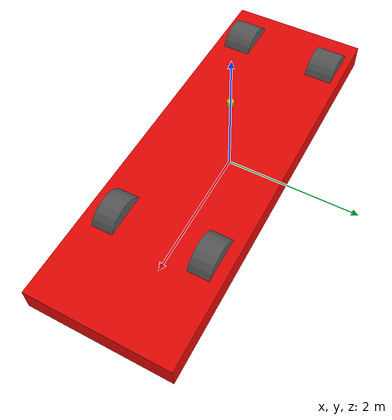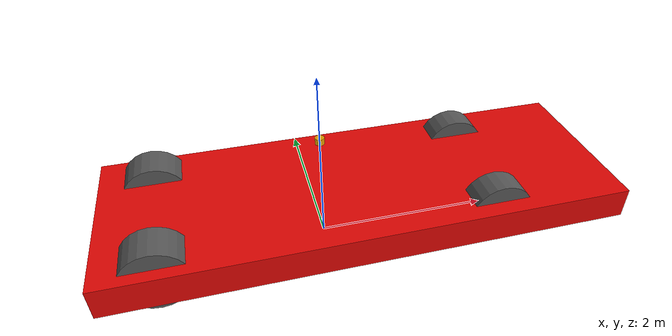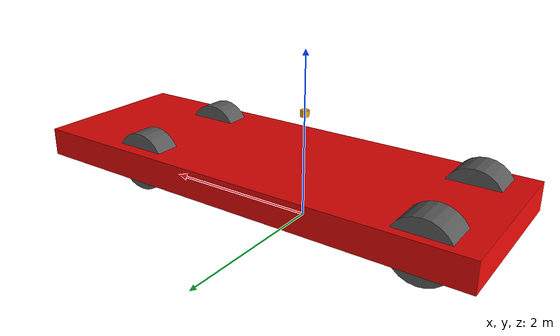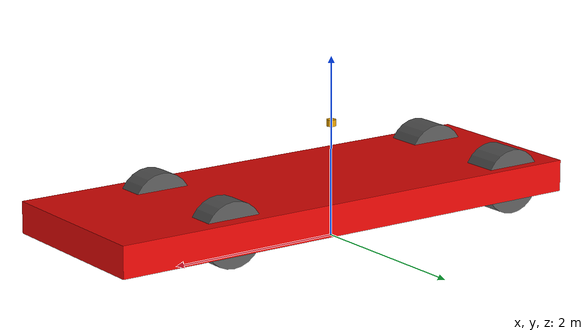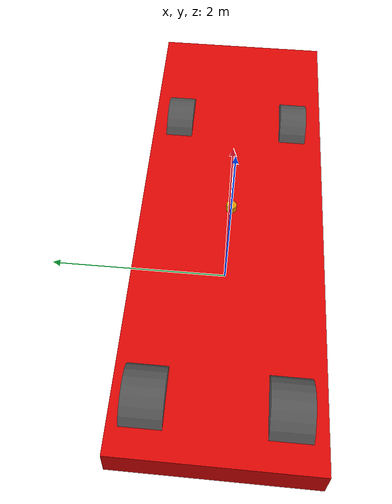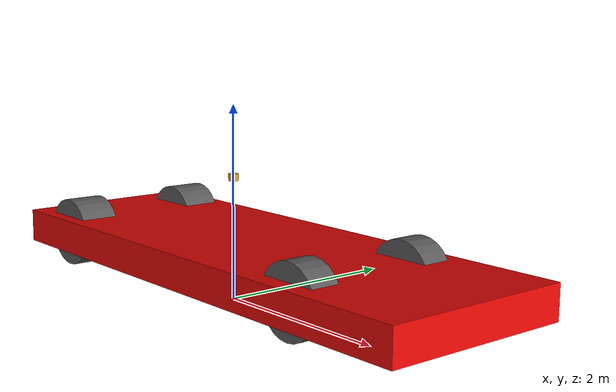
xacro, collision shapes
<?xml version="1.0"?>

<robot xmlns:xacro="http://www.ros.org/wiki/xacro" name="formula">

    <xacro:arg name="gpu" default="true"/>
    <xacro:property name="gpu" value="$(arg gpu)" />
    <xacro:arg name="organize_cloud" default="false"/>
    <xacro:property name="organize_cloud" value="$(arg organize_cloud)" />

    <!-- Include -->
    <xacro:include filename="$(find spawn_robot)/model/formula/urdf/bases/formula_body.urdf.xacro"/>
    <xacro:include filename="$(find spawn_robot)/model/formula/urdf/wheels/formula_suspension.urdf.xacro"/>
    <xacro:include filename="$(find spawn_robot)/model/formula/urdf/vehicle_properties.urdf.xacro"/>
    <xacro:include filename="$(find spawn_robot)/model/formula/urdf/formula.gazebo"/>
    <xacro:include filename="$(find spawn_robot)/model/formula/urdf/sensors/vlp-16.urdf.xacro"/>
    <!-- Robots Elements -->
    <xacro:formula_base name="formula"/>
    <xacro:Front_Right_Wheel/>
    <xacro:Front_Left_Wheel/>
    <xacro:Rear_Right_Wheel/>
    <xacro:Rear_Left_Wheel/>

    <xacro:VLP-16 parent="chassis" name="velodyne" topic="/velodyne_points" organize_cloud="${organize_cloud}" hz="10" samples="440" gpu="${gpu}">
      <origin xyz="0 0 ${car_height - 0.23}" rpy="0 0 0" />
    </xacro:VLP-16>
</robot>

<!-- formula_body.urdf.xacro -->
<!--
Created on Thu Jan 18 2024

@author: hifzhil
-->
<robot xmlns:xacro="http://www.ros.org/wiki/xacro" name="formula">
    <xacro:include filename="$(find spawn_robot)/model/formula/urdf/vehicle_properties.urdf.xacro"/>
    <xacro:include filename="$(find spawn_robot)/model/formula/urdf/bases/formula_body.gazebo.xacro"/>

    <material name="chassis_mat">
        <color rgba="0.2 0.2 0.2 1"/>
        <!-- grey -->
    </material>

    <material name="sf24_livery" >
        <color rgba="0.91 0.03 0.02 1.0" />
    </material>

    <xacro:macro name="formula_base" params="name">
        <link name="dummy">
            <visual>
                <origin xyz="0 0 0" rpy="0 0 0"/>
                <geometry>
                    <box size="0.001 0.001 0.001"/>
                </geometry>
            </visual>
        </link>

        <joint name="world_to_vehicle_center" type="fixed">
            <parent link="dummy"/>
            <child link="chassis"/>
            <origin xyz="0.0 0.0 ${ground_clearance + (chassis_thickness/2)}"/>
            <axis xyz = "0 0 1"/>
        </joint>

        <link name="chassis">

            <visual>
                <origin xyz="0.42 -0.015 0.22" rpy="0 0 ${degree_270}"/>
                <geometry>
                  <mesh filename="file://$(find spawn_robot)/model/formula/meshes/F1_2023_halo_livery.stl" scale="0.03 0.03 0.03"/>
                </geometry>

                <material name="sf24_livery" >
                    <color rgba="0.91 0.03 0.02 1.0" />
                </material>
            </visual>

            <collision>
                <origin xyz="0.42 -0.015 0.0" rpy="0 0 0"/>
                <geometry>
                    <box size="${car_length} ${car_width} ${car_height - 0.6} "/>
                </geometry>
                <material name="sf24_livery" >
                    <color rgba="0.91 0.03 0.02 1.0" />
                </material>
            </collision>

            <xacro:inertia_of_body/>
        </link>
    </xacro:macro>

</robot>

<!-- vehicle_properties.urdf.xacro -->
<!--
Created on Thu Jan 18 12:02:12 2024

@author: hifzhil
-->

<robot name="formula_properties" xmlns:xacro="http://www.ros.org/wiki/xacro">
    <!-- my name is formula-->

    <!-- CONSTANT -->
    <xacro:property name = "degree_45" value="0.785398" />
    <xacro:property name = "degree_90" value="1.57079633"/>
    <xacro:property name = "degree_180" value="3.14159265"/>
    <xacro:property name = "degree_270" value="4.71239"/>
    <xacro:property name = "degree_360" value="6.28319"/>

    <xacro:property name="car_length" value="5.688" />
    <xacro:property name="car_width" value="2.00" />
    <xacro:property name="car_height" value="0.95" />
    <xacro:property name="car_mass" value="798.0" />

    <xacro:property name="front_overhang" value="1.225" />
    <xacro:property name="rear_overhang" value="0.810" />

    <!-- misalkan formula adalah balok -->
    <xacro:property name="vehicle_volume" value="${car_length*car_width*car_height}"/>

    <xacro:property name="ground_clearance" value="0.036" />
    <xacro:property name="wheel_base" value="3.663" />
    <!-- chassis -->
    <xacro:property name="chassis_width" value="2.00" />
    <xacro:property name="chassis_length" value="5.688" />
    <xacro:property name="chassis_thickness" value="0.95" />
    <xacro:property name="chassis_mass" value="798.0" />
       <!-- variable -->

    <!-- aluminium density is 2.7 g/cm³ or 2700 kg/m3-->
    <xacro:property name="body_density" value="2700.0" />
    <!-- density of all tyre brands is nearly the same which is around 1.1 gr/cm3 or 1100 kg/m3 -->
    <xacro:property name="wheel_density" value="1100.0" />

    <!-- fixed transformation
        this value on rad. 1.570795 is a phi/2
    -->
    <xacro:property name="wheel_cylindrical_transform" value="1.570795" />

    <!-- mass -->
    <!-- let assume the mass of box same as half aluminium at it size-->
    <xacro:property name="body_mass" value="${body_density*body_volume*(1/2)}"/>
    <xacro:property name="wheel_mass" value="${wheel_density*wheel_volume}"/>

    <xacro:property name="front_tyre_radius" value="0.360"/>
    <xacro:property name="front_tyre_width" value="0.305"/>
    <xacro:property name="front_tyre_mass" value="10.0"/>

    <xacro:property name="rear_tyre_radius" value="0.360"/>
    <xacro:property name="rear_tyre_width" value="0.405"/>
    <xacro:property name="rear_tyre_mass" value="10.0"/>

    <xacro:property name="front_track" value="1.35" />
    <xacro:property name="rear_track" value="1.35" />

    <!-- moment inertia of wheel -->
    <xacro:property name="Iz_wheel" value="${0.5*wheel_mass*wheel_radius*wheel_radius}"/>
    <xacro:property name="I_wheel" value="${1/12*wheel_mass*(3*wheel_radius*wheel_radius + wheel_length*wheel_length)}"/>

  <!-- this is macro that we can call it anywhere on code
      it defines all inertia component on the wheel
  -->
    <xacro:macro name="inertia_of_wheel">
        <inertial>
            <origin rpy="0 0 0" xyz="0 0 0"/>
            <mass value="${wheel_mass}"/>
            <inertia
                ixx="${I_wheel}"
                ixy="0.0"
                ixz="0.0"
                iyy="${I_wheel}"
                iyz="0.0"
                izz="${Iz_wheel}"
            />
        </inertial>
    </xacro:macro>

    <xacro:macro name="inertia_of_body">
        <inertial>
            <origin rpy="0 0 0" xyz="0 0 0"/>
            <mass value="${chassis_mass}"/>
            <inertia
                ixy="0.0"
                ixz="0.0"
                iyz="0.0"
                ixx = "${(1/12)*chassis_mass*(chassis_width*chassis_width + chassis_thickness*chassis_thickness)}"
                iyy = "${(1/12)*chassis_mass*(chassis_length*chassis_length + chassis_thickness*chassis_thickness)}"
                izz = "${(1/12)*chassis_mass*(chassis_length*chassis_length + chassis_width*chassis_width)}"
            />
        </inertial>
    </xacro:macro>
</robot>

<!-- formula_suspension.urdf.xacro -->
<!--
Created on Sat Jan 20 2024

@author: hifzhil
-->
<robot xmlns:xacro="http://www.ros.org/wiki/xacro" name="suspension urdf">

    <material name="pirelli" >
        <color rgba="0.35 0.35 0.35 1.0" />
    </material>

    <xacro:include filename="$(find spawn_robot)/model/formula/urdf/wheels/suspension.gazebo.xacro"/>
    <xacro:include filename="$(find spawn_robot)/model/formula/urdf/vehicle_properties.urdf.xacro"/>

    <xacro:property name="Iz_rear_wheel" value="${0.5*rear_tyre_mass*rear_tyre_radius*rear_tyre_radius}"/>
    <xacro:property name="I_rear_wheel" value="${1/12*rear_tyre_mass*(3*rear_tyre_radius*rear_tyre_radius + rear_tyre_width*rear_tyre_width)}"/>

    <xacro:property name="Iz_front_wheel" value="${0.5*front_tyre_mass*front_tyre_radius*front_tyre_radius}"/>
    <xacro:property name="I_front_wheel" value="${1/12*front_tyre_mass*(3*front_tyre_radius*front_tyre_radius + front_tyre_width*front_tyre_width)}"/>

    <xacro:macro name="inertia_of_front_wheel">
        <inertial>
          <origin rpy="0 0 0" xyz="0 0 0"/>
          <mass value="${front_tyre_mass}"/>
          <inertia
            ixx="${I_front_wheel}"
            ixy="0.0"
            ixz="0.0"
            iyy="${I_front_wheel}"
            iyz="0.0"
            izz="${Iz_front_wheel}"
          />
        </inertial>
    </xacro:macro>

    <xacro:macro name="inertia_of_rear_wheel">
        <inertial>
          <origin rpy="0 0 0" xyz="0 0 0"/>
          <mass value="${rear_tyre_mass}"/>
          <inertia
            ixx="${I_rear_wheel}"
            ixy="0.0"
            ixz="0.0"
            iyy="${I_rear_wheel}"
            iyz="0.0"
            izz="${Iz_rear_wheel}"
          />
        </inertial>
    </xacro:macro>

    <xacro:macro name="Front_Left_Wheel">
        <joint name="front_left_steer_joint" type="revolute">
            <parent link="chassis"/>
            <child link="fl_axle"/>
            <origin rpy="${degree_90} 0 0" xyz="${wheel_base/2} ${front_track/2} 0"/>
            <axis xyz="0 1 0"/>
            <limit lower="-0.785398" upper="0.785398" effort="500000" velocity="250"/>
        </joint>
        <joint name="front_left_wheel_joint" type="continuous">
            <parent link="fl_axle"/>
            <child link="front_left_wheel"/>
            <origin xyz="0 0 0" rpy="0 0 0"/>
            <axis xyz="0 0 -1"/>
            <limit effort="1000" velocity="1000"/>
            <dynamics damping="1.0" friction="1.0"/>
        </joint>
    </xacro:macro>

    <xacro:macro name="Front_Right_Wheel">
        <joint name="front_right_steer_joint" type="revolute">
            <parent link="chassis"/>
            <child link="fr_axle"/>
            <origin rpy="${degree_90} 0 0" xyz="${wheel_base/2} ${-front_track/2} 0"/>
            <axis xyz="0 1 0"/>
            <limit lower="-0.785398" upper="0.785398" effort="500000" velocity="250"/>
        </joint>
        <joint name="front_right_wheel_joint" type="continuous">
            <parent link="fr_axle"/>
            <child link="front_right_wheel"/>
            <origin xyz="0 0 0" rpy="0 0 0"/>
            <axis xyz="0 0 -1"/>
            <limit effort="1000" velocity="1000"/>
            <dynamics damping="1.0" friction="1.0"/>
        </joint>
    </xacro:macro>

    <xacro:macro name="Rear_Left_Wheel">
        <joint name="rear_left_wheel_joint" type="continuous">
            <parent link="chassis"/>
            <child link="rear_left_wheel"/>
            <origin rpy="${degree_90} 0 0" xyz="${-wheel_base/2} ${rear_track/2} 0"/>
            <axis xyz="0 0 -1"/>
            <limit effort="1000" velocity="1000"/>
            <dynamics damping="1.0" friction="1.0"/>
        </joint>
    </xacro:macro>

    <xacro:macro name="Rear_Right_Wheel">
        <joint name="rear_right_wheel_joint" type="continuous">
            <parent link="chassis"/>
            <child link="rear_right_wheel"/>
            <origin rpy="${degree_90} 0 0" xyz="${-wheel_base/2} ${-rear_track/2} 0"/>
            <axis xyz="0 0 -1"/>
            <limit effort="1000" velocity="1000"/>
            <dynamics damping="1.0" friction="1.0"/>
        </joint>
    </xacro:macro>

    <link name="fl_axle">
        <inertial>
          <mass value="1"/>
          <origin xyz="0 0 0"/>
          <inertia ixx="0.004" ixy="0.0" ixz="0.0" iyy="0.004" iyz="0.0" izz="0.004"/>
        </inertial>
        <collision>
            <geometry>
              <box size="0.05 0.05 0.15" />
            </geometry>
        </collision>
        <visual>
            <geometry>
              <box size="0.05 0.05 0.15" />
            </geometry>
        </visual>
    </link>

    <link name="fr_axle">
        <inertial>
            <mass value="1"/>
            <origin xyz="0 0 0"/>
            <inertia ixx="0.004" ixy="0.0" ixz="0.0" iyy="0.004" iyz="0.0" izz="0.004"/>
        </inertial>
        <collision>
            <geometry>
              <box size="0.05 0.05 0.15" />
            </geometry>
        </collision>
        <visual>
            <geometry>
              <box size="0.05 0.05 0.15" />
            </geometry>
        </visual>
    </link>

    <link name="front_right_wheel">
        <visual>
            <origin rpy="0 0 0" xyz="0.0 0.0 0.0"/>

            <geometry>
                <mesh filename="file://$(find spawn_robot)/model/formula/meshes/F1_2023_halo_wheel.stl" scale="0.034 0.034 0.034"/>
            </geometry>

            <material name="pirelli"/>
        </visual>
        <collision>
            <origin rpy="0 0 0" xyz="0 0 0"/>

            <geometry>
                <cylinder length="${front_tyre_width}" radius="${front_tyre_radius}"/>
            </geometry>

            <material name="pirelli"/>
        </collision>
        <xacro:inertia_of_front_wheel/>
    </link>

    <link name="front_left_wheel">
        <visual>
            <origin rpy="0 ${degree_180} 0" xyz="0 0 0"/>

            <geometry>
                <mesh filename="file://$(find spawn_robot)/model/formula/meshes/F1_2023_halo_wheel.stl" scale="0.034 0.034 0.034"/>
            </geometry>

            <material name="pirelli"/>
        </visual>
        <collision>
            <origin rpy="0 0 0" xyz="0 0 0"/>

            <geometry>
                <cylinder length="${front_tyre_width}" radius="${front_tyre_radius}"/>
            </geometry>

            <material name="pirelli"/>
        </collision>
        <xacro:inertia_of_front_wheel/>
    </link>

    <link name="rear_right_wheel">
        <visual>
            <origin rpy="0 0 0" xyz="0 0 0"/>

            <geometry>
                <mesh filename="file://$(find spawn_robot)/model/formula/meshes/F1_2023_halo_wheel.stl" scale="0.034 0.034 0.034"/>
            </geometry>

            <material name="pirelli"/>
        </visual>
        <collision>
            <origin rpy="0 0 0" xyz="0 0 0"/>

            <geometry>
                <cylinder length="${rear_tyre_width}" radius="${rear_tyre_radius}"/>
            </geometry>

            <material name="pirelli"/>
        </collision>
        <xacro:inertia_of_rear_wheel/>
    </link>

    <link name="rear_left_wheel">
        <visual>
            <origin rpy="${degree_180} 0 0" xyz="0 0 0"/>

            <geometry>
                <mesh filename="file://$(find spawn_robot)/model/formula/meshes/F1_2023_halo_wheel.stl" scale="0.034 0.034 0.034"/>
            </geometry>

            <material name="pirelli"/>
        </visual>
        <collision>
            <origin rpy="0 0 0" xyz="0 0 0"/>

            <geometry>
                <cylinder length="${rear_tyre_width}" radius="${rear_tyre_radius}"/>
            </geometry>

            <material name="pirelli"/>
        </collision>
        <xacro:inertia_of_rear_wheel/>
    </link>
</robot>

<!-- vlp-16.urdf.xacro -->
<robot xmlns:xacro="http://www.ros.org/wiki/xacro" name="VLP-16">
  <xacro:property name="M_PI" value="3.1415926535897931" />
    <xacro:macro name="VLP-16" params="*origin parent:=chassis name:=velodyne topic:=/velodyne_points organize_cloud:=false hz:=10 lasers:=16 samples:=1875 collision_range:=0.3 min_range:=0.9 max_range:=130.0 noise:=0.008 min_angle:=-${M_PI} max_angle:=${M_PI} gpu:=false">

        <joint name="${name}_base_mount_joint" type="fixed">
        <xacro:insert_block name="origin" />
        <parent link="${parent}"/>
        <child link="${name}_base_link"/>
        </joint>

        <link name="${name}_base_link">
        <inertial>
            <mass value="0.83"/>
            <origin xyz="0 0 0.03585"/>
            <inertia ixx="${(0.83 * (3.0*0.0516*0.0516 + 0.0717*0.0717)) / 12.0}" ixy="0" ixz="0"
            iyy="${(0.83 * (3.0*0.0516*0.0516 + 0.0717*0.0717)) / 12.0}" iyz="0"
            izz="${0.5 * 0.83 * (0.0516*0.0516)}"/>
        </inertial>
        <visual>
            <geometry>
            <mesh filename="file://$(find spawn_robot)/model/formula/meshes/VLP16_base_1.dae" />
            </geometry>
        </visual>
        <visual>
            <geometry>
            <mesh filename="file://$(find spawn_robot)/model/formula/meshes/VLP16_base_2.dae" />
            </geometry>
        </visual>
        <collision>
            <origin rpy="0 0 0" xyz="0 0 0.03585"/>
            <geometry>
            <cylinder radius="0.0516" length="0.0717"/>
            </geometry>
        </collision>
        </link>

        <joint name="${name}_base_scan_joint" type="fixed" >
        <origin xyz="0 0 0.0377" rpy="0 0 0" />
        <parent link="${name}_base_link" />
        <child link="${name}"/>
        </joint>

        <link name="${name}">
        <inertial>
            <mass value="0.01"/>
            <origin xyz="0 0 0"/>
            <inertia ixx="1e-7" ixy="0" ixz="0" iyy="1e-7" iyz="0" izz="1e-7"/>
        </inertial>
        <visual>
            <origin xyz="0 0 -0.0377" />
            <geometry>
            <mesh filename="file://$(find spawn_robot)/model/formula/meshes/VLP16_scan.dae" />
            </geometry>
        </visual>
        <collision>
            <geometry>
            <sphere radius="0"/>
            </geometry>
        </collision>
        </link>

        <gazebo reference="${name}">
        <xacro:if value="${gpu}">
            <sensor type="gpu_lidar" name="${name}-VLP16">
            <pose>0 0 0 0 0 0</pose>
            <visualize>true</visualize>
            <update_rate>${hz}</update_rate>
            <always_on>1</always_on>
            <topic>${topic}</topic>
            <gz_frame_id>${name}</gz_frame_id>
            <lidar>
                <scan>
                <horizontal>
                    <samples>${samples}</samples>
                    <resolution>1</resolution>
                    <min_angle>${min_angle}</min_angle>
                    <max_angle>${max_angle}</max_angle>
                </horizontal>
                <vertical>
                    <samples>${lasers}</samples>
                    <resolution>1</resolution>
                    <min_angle>-${15.0*M_PI/180.0}</min_angle>
                    <max_angle> ${15.0*M_PI/180.0}</max_angle>
                </vertical>
                </scan>
                <range>
                <min>${collision_range}</min>
                <max>${max_range+1}</max>
                <resolution>0.001</resolution>
                </range>
                <noise>
                <type>gaussian</type>
                <mean>0.0</mean>
                <stddev>0.0</stddev>
                </noise>
                <frame_id>${name}</frame_id>
            </lidar>
            </sensor>
        </xacro:if>
        </gazebo>
    </xacro:macro>
</robot>
